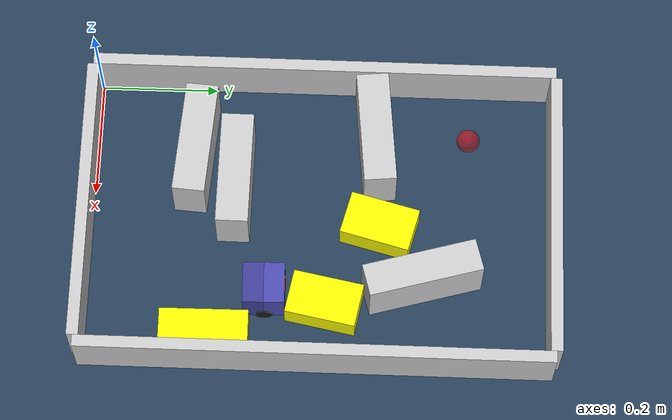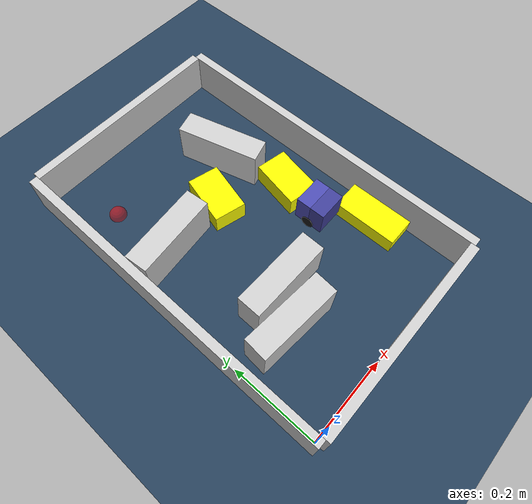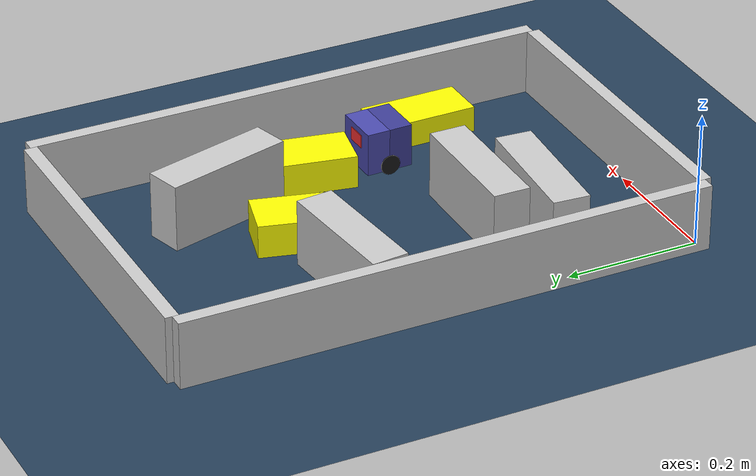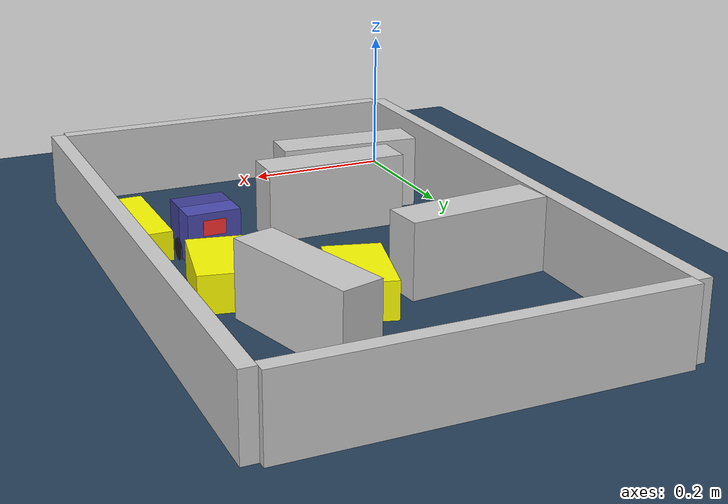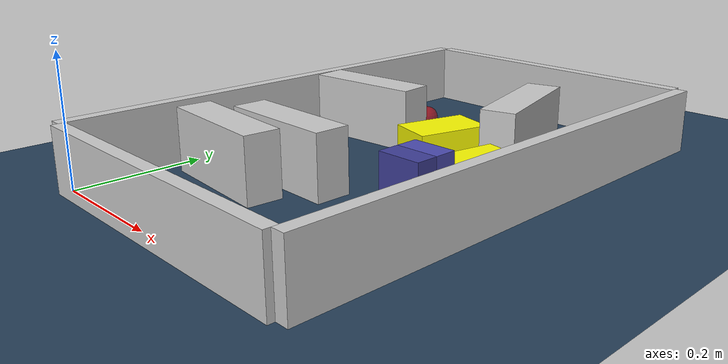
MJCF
<?xml version='1.0' encoding='utf-8'?>
<mujoco model="real_buildable">
  <compiler angle="degree" />
  <option timestep="0.002" integrator="implicitfast" iterations="100" cone="elliptic" />
  <default>
    <geom density="1" />
  </default>
  <asset>
    <texture builtin="gradient" height="3072" rgb1="0.3 0.5 0.7" rgb2="0 0 0" type="skybox" width="512" />
    <texture builtin="checker" height="300" mark="edge" markrgb="0.8 0.8 0.8" name="groundplane" rgb1="0.2 0.3 0.4" rgb2="0.1 0.2 0.3" type="2d" width="300" />
    <material name="groundplane" reflectance="0.2" texrepeat="5 5" texture="groundplane" texuniform="true" />
  </asset>
  <worldbody>
    <light dir="0 0 -1" directional="true" pos="0 0 1.5" />
    <geom name="floor" type="plane" condim="4" friction="0.5 0.005 0.001" material="groundplane" size="0 0 0.05" />
    <body name="walls">
      <geom name="wall_boundary_left" type="box" condim="4" friction="1.0 0.005 0.0001" rgba="0.8 0.8 0.8 1" pos="-0.010000 0.387500 0.050000" euler="0 0 0.000000" size="0.010000 0.397500 0.050000" />
      <geom name="wall_boundary_right" type="box" condim="4" friction="1.0 0.005 0.0001" rgba="0.8 0.8 0.8 1" pos="0.500000 0.387500 0.050000" euler="0 0 0.000000" size="0.010000 0.397500 0.050000" />
      <geom name="wall_boundary_bottom" type="box" condim="4" friction="1.0 0.005 0.0001" rgba="0.8 0.8 0.8 1" pos="0.245000 -0.010000 0.050000" euler="0 0 0.000000" size="0.245000 0.010000 0.050000" />
      <geom name="wall_boundary_top" type="box" condim="4" friction="1.0 0.005 0.0001" rgba="0.8 0.8 0.8 1" pos="0.245000 0.785000 0.050000" euler="0 0 0.000000" size="0.245000 0.010000 0.050000" />
      <geom name="wall_inner_1" type="box" condim="4" friction="1.0 0.005 0.0001" rgba="0.8 0.8 0.8 1" pos="0.130406 0.172466 0.050000" euler="0 0 -4.223531" size="0.097500 0.027500 0.050000" />
      <geom name="wall_inner_2" type="box" condim="4" friction="1.0 0.005 0.0001" rgba="0.8 0.8 0.8 1" pos="0.183492 0.241933 0.050000" euler="0 0 -0.526590" size="0.097500 0.027500 0.050000" />
      <geom name="wall_inner_3" type="box" condim="4" friction="1.0 0.005 0.0001" rgba="0.8 0.8 0.8 1" pos="0.100000 0.479000 0.050000" euler="0 0 5.600000" size="0.097500 0.027500 0.050000" />
      <geom name="wall_inner_4" type="box" condim="4" friction="1.0 0.005 0.0001" rgba="0.8 0.8 0.8 1" pos="0.352000 0.563000 0.050000" euler="0 0 105.700000" size="0.097500 0.027500 0.050000" />
    </body>
    <body name="car" pos="0.38106881838129836 0.29913833930019795 0.01" quat="0.7001401384474254 0 0 0.71400545273465521">
      <freejoint name="car_freejoint" />
      <inertial pos="0 0 0.0375" mass="0.35" diaginertia="0.000266 0.000266 0.000286" />
      <geom name="front_chassis_collision" type="box" pos="0.0175 0 0.0375" size="0.0175 0.035 0.0325" rgba="0.3 0.3 0.7 1" />
      <geom name="rear_chassis_collision" type="box" pos="-0.0175 0 0.0375" size="0.0175 0.035 0.0325" rgba="0.25 0.25 0.6 1" />
      <geom name="front_marker" type="box" pos="0.034 0 0.0505" size="0.002 0.015 0.01" rgba="1 0.2 0.2 1" contype="0" conaffinity="0" />
      <body name="rear_support_body" pos="-0.03 0 0.0025">
        <joint name="rear_caster_joint" type="ball" damping="0.0001" />
        <inertial pos="0 0 0" mass="0.025" diaginertia="0.000001 0.000001 0.000001" />
        <geom name="rear_support" type="sphere" pos="0 0 0" size="0.0025" friction="0 0 0" rgba="0.7 0.1 0.1 1" />
      </body>
      <body name="front_support_body" pos="0.03 0 0.0025">
        <joint name="front_caster_joint" type="ball" damping="0.0001" />
        <inertial pos="0 0 0" mass="0.025" diaginertia="0.000001 0.000001 0.000001" />
        <geom name="front_support" type="sphere" pos="0 0 0" size="0.0025" friction="0 0 0" rgba="0.1 0.7 0.1 1" />
      </body>
      <body name="left_wheel" pos="0 0.0375 0.015">
        <inertial pos="0 0 0" mass="0.05" diaginertia="0.000003 0.000006 0.000003" />
        <joint name="left_wheel_joint" type="hinge" axis="0 1 0" damping="0.01" armature="0.0001" />
        <geom name="left_wheel_collision" type="cylinder" size="0.015 0.0005" euler="90 0 0" rgba="0.1 0.1 0.1 1" />
      </body>
      <body name="right_wheel" pos="0 -0.0375 0.015">
        <inertial pos="0 0 0" mass="0.05" diaginertia="0.000003 0.000006 0.000003" />
        <joint name="right_wheel_joint" type="hinge" axis="0 1 0" damping="0.01" armature="0.0001" />
        <geom name="right_wheel_collision" type="cylinder" size="0.015 0.0005" euler="90 0 0" rgba="0.1 0.1 0.1 1" />
      </body>
    </body>
    <body name="obstacle_0_movable">
      <geom name="obstacle_0_movable" condim="4" pos="0.39446613853955498 0.40053631756580788 0.025000000000000001" friction="1 0.005 0.0001" rgba="1 1 0 1" size="0.037500 0.060000 0.025000" type="box" mass="0.1" quat="0.095495589467270839 0 0 0.99542985307468979" />
      <joint type="free" />
    </body>
    <body name="obstacle_1_movable">
      <geom name="obstacle_1_movable" condim="4" pos="0.25299999999999973 0.48999999999999955 0.025000000000000001" friction="1 0.005 0.0001" rgba="1 1 0 1" size="0.037500 0.060000 0.025000" type="box" mass="0.1" quat="0.99178318012957767 0 0 -0.12793015130164428" />
      <joint type="free" />
    </body>
    <body name="obstacle_2_movable">
      <geom name="obstacle_2_movable" condim="4" pos="0.45246098901941684 0.20001460058016246 0.02" friction="1 0.005 0.0001" rgba="1 1 0 1" size="0.035000 0.075000 0.020000" type="box" mass="0.1" quat="0.99999464221611589 0 0 0.0032734598000307017" />
      <joint type="free" />
    </body>
    <site name="goal" type="sphere" pos="0.080000 0.640000 0.0" size="0.02" rgba="1 0 0 0.5" />
  </worldbody>
  <actuator>
    <velocity name="left_wheel_drive" joint="left_wheel_joint" ctrlrange="-25 25" kv="0.75" forcerange="-0.5 0.5" />
    <velocity name="right_wheel_drive" joint="right_wheel_joint" ctrlrange="-25 25" kv="0.75" forcerange="-0.5 0.5" />
  </actuator>
</mujoco>
